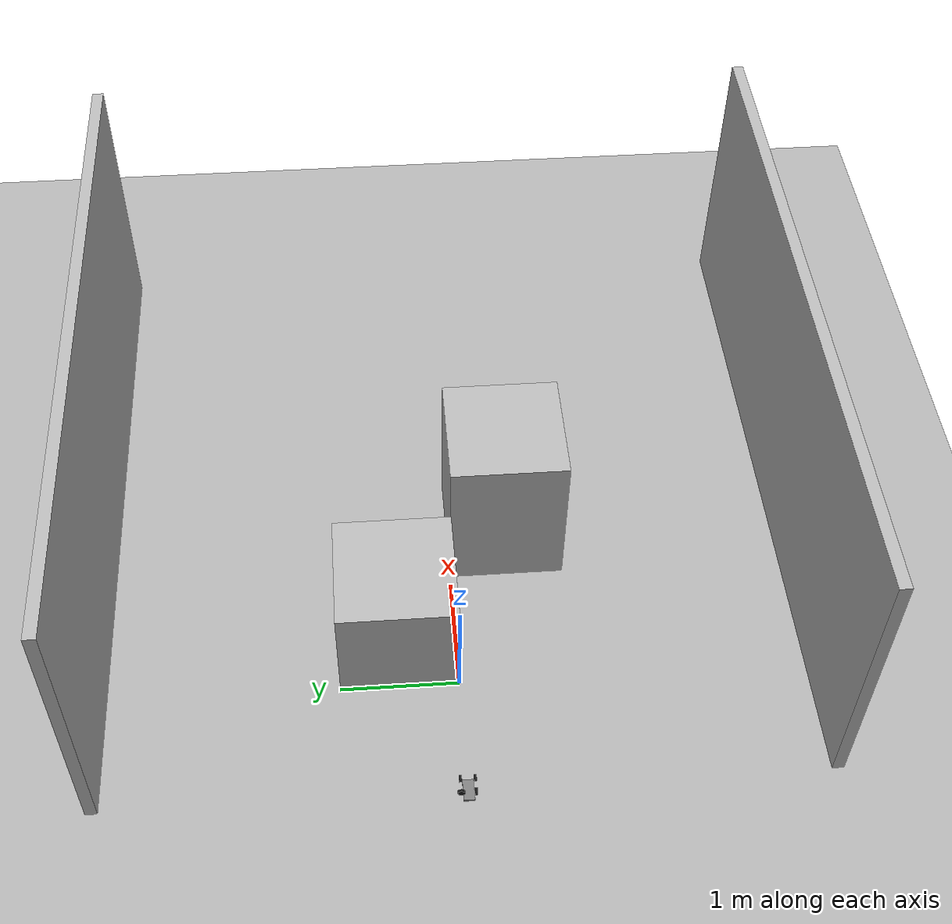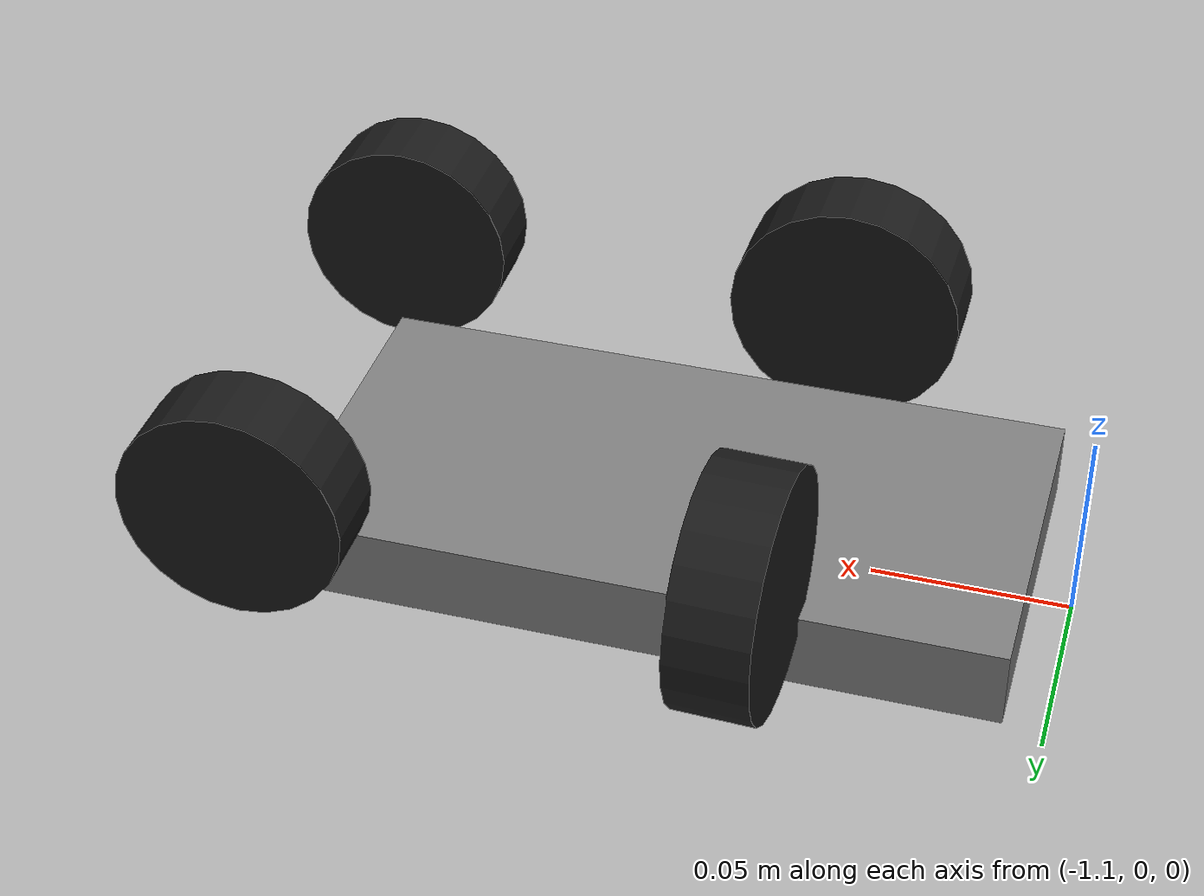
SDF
<sdf version='1.10'>
  <world name='factory'>
    <gravity>0 0 -9.8000000000000007</gravity>
    <magnetic_field>5.5644999999999998e-06 2.2875799999999999e-05 -4.2388400000000002e-05</magnetic_field>
    <atmosphere type='adiabatic'/>
    <physics type='ode'>
      <max_step_size>0.001</max_step_size>
      <real_time_factor>1</real_time_factor>
      <real_time_update_rate>1000</real_time_update_rate>
    </physics>
    <scene>
      <ambient>0.400000006 0.400000006 0.400000006 1</ambient>
      <background>0.699999988 0.699999988 0.699999988 1</background>
      <shadows>true</shadows>
    </scene>
    <model name='ground'>
      <static>true</static>
      <link name='base_link'>
        <collision name='base_col'>
          <geometry>
            <plane>
              <normal>0 0 1</normal>
              <size>100 100</size>
            </plane>
          </geometry>
          <surface>
            <friction>
              <ode/>
            </friction>
            <bounce/>
            <contact/>
          </surface>
        </collision>
        <visual name='base_vis'>
          <geometry>
            <plane>
              <normal>0 0 1</normal>
              <size>100 100</size>
            </plane>
          </geometry>
          <material>
            <ambient>0.699999988 0.699999988 0.699999988 1</ambient>
            <diffuse>0.699999988 0.699999988 0.699999988 1</diffuse>
          </material>
        </visual>
        <pose>0 0 0 0 0 0</pose>
        <inertial>
          <pose>0 0 0 0 0 0</pose>
          <mass>1</mass>
          <inertia>
            <ixx>1</ixx>
            <ixy>0</ixy>
            <ixz>0</ixz>
            <iyy>1</iyy>
            <iyz>0</iyz>
            <izz>1</izz>
          </inertia>
        </inertial>
        <enable_wind>false</enable_wind>
      </link>
      <pose>0 0 0 0 0 0</pose>
      <self_collide>false</self_collide>
    </model>
    <model name='wall1'>
      <static>true</static>
      <pose>2 -3 1.25 0 0 0</pose>
      <link name='l'>
        <collision name='c'>
          <geometry>
            <box>
              <size>6 0.10000000000000001 2.5</size>
            </box>
          </geometry>
          <surface>
            <friction>
              <ode/>
            </friction>
            <bounce/>
            <contact/>
          </surface>
        </collision>
        <visual name='v'>
          <geometry>
            <box>
              <size>6 0.10000000000000001 2.5</size>
            </box>
          </geometry>
        </visual>
        <pose>0 0 0 0 0 0</pose>
        <inertial>
          <pose>0 0 0 0 0 0</pose>
          <mass>1</mass>
          <inertia>
            <ixx>1</ixx>
            <ixy>0</ixy>
            <ixz>0</ixz>
            <iyy>1</iyy>
            <iyz>0</iyz>
            <izz>1</izz>
          </inertia>
        </inertial>
        <enable_wind>false</enable_wind>
      </link>
      <self_collide>false</self_collide>
    </model>
    <model name='wall2'>
      <static>true</static>
      <pose>2 3 1.25 0 0 0</pose>
      <link name='l'>
        <collision name='c'>
          <geometry>
            <box>
              <size>6 0.10000000000000001 2.5</size>
            </box>
          </geometry>
          <surface>
            <friction>
              <ode/>
            </friction>
            <bounce/>
            <contact/>
          </surface>
        </collision>
        <visual name='v'>
          <geometry>
            <box>
              <size>6 0.10000000000000001 2.5</size>
            </box>
          </geometry>
        </visual>
        <pose>0 0 0 0 0 0</pose>
        <inertial>
          <pose>0 0 0 0 0 0</pose>
          <mass>1</mass>
          <inertia>
            <ixx>1</ixx>
            <ixy>0</ixy>
            <ixz>0</ixz>
            <iyy>1</iyy>
            <iyz>0</iyz>
            <izz>1</izz>
          </inertia>
        </inertial>
        <enable_wind>false</enable_wind>
      </link>
      <self_collide>false</self_collide>
    </model>
    <model name='box_1'>
      <static>true</static>
      <pose>0.5 0.5 0.5 0 0 0</pose>
      <link name='link'>
        <collision name='col'>
          <geometry>
            <box>
              <size>1 1 1</size>
            </box>
          </geometry>
          <surface>
            <friction>
              <ode/>
            </friction>
            <bounce/>
            <contact/>
          </surface>
        </collision>
        <visual name='vis'>
          <geometry>
            <box>
              <size>1 1 1</size>
            </box>
          </geometry>
        </visual>
        <pose>0 0 0 0 0 0</pose>
        <inertial>
          <pose>0 0 0 0 0 0</pose>
          <mass>1</mass>
          <inertia>
            <ixx>1</ixx>
            <ixy>0</ixy>
            <ixz>0</ixz>
            <iyy>1</iyy>
            <iyz>0</iyz>
            <izz>1</izz>
          </inertia>
        </inertial>
        <enable_wind>false</enable_wind>
      </link>
      <self_collide>false</self_collide>
    </model>
    <model name='box_2'>
      <static>true</static>
      <pose>1.6000000000000001 -0.5 0.69999999999999996 0 0 0</pose>
      <link name='link'>
        <collision name='col'>
          <geometry>
            <box>
              <size>1 1 1.3999999999999999</size>
            </box>
          </geometry>
          <surface>
            <friction>
              <ode/>
            </friction>
            <bounce/>
            <contact/>
          </surface>
        </collision>
        <visual name='vis'>
          <geometry>
            <box>
              <size>1 1 1.3999999999999999</size>
            </box>
          </geometry>
        </visual>
        <pose>0 0 0 0 0 0</pose>
        <inertial>
          <pose>0 0 0 0 0 0</pose>
          <mass>1</mass>
          <inertia>
            <ixx>1</ixx>
            <ixy>0</ixy>
            <ixz>0</ixz>
            <iyy>1</iyy>
            <iyz>0</iyz>
            <izz>1</izz>
          </inertia>
        </inertial>
        <enable_wind>false</enable_wind>
      </link>
      <self_collide>false</self_collide>
    </model>
    <model name='picarx'>
      <pose>-0.99999999979000742 -2.4032243071626877e-20 0.0099998899042751076 2.326947831632521e-18 2.113848987451022e-08 -3.3032088206838045e-21</pose>
      <static>false</static>
      <link name='base_link'>
        <pose>0 0 0 0 0 0</pose>
        <inertial>
          <mass>1</mass>
          <inertia>
            <ixx>0.00071000000000000002</ixx>
            <iyy>0.0027299999999999998</iyy>
            <izz>0.0033800000000000002</izz>
            <ixy>0</ixy>
            <ixz>0</ixz>
            <iyz>0</iyz>
          </inertia>
          <pose>0 0 0 0 0 0</pose>
        </inertial>
        <collision name='base_col'>
          <geometry>
            <box>
              <size>0.17999999999999999 0.089999999999999997 0.02</size>
            </box>
          </geometry>
          <surface>
            <friction>
              <ode>
                <mu>1</mu>
                <mu2>1</mu2>
              </ode>
            </friction>
            <bounce/>
            <contact/>
          </surface>
        </collision>
        <visual name='base_vis'>
          <geometry>
            <box>
              <size>0.17999999999999999 0.089999999999999997 0.02</size>
            </box>
          </geometry>
          <material>
            <ambient>0.5 0.5 0.5 1</ambient>
          </material>
        </visual>
        <enable_wind>false</enable_wind>
      </link>
      <link name='left_wheel'>
        <pose>-0.029999999987896153 0.060000000000517251 0.030000107629610903 1.570796445386559 -3.6712902045182054e-06 1.5385060517673379</pose>
        <inertial>
          <mass>0.050000000000000003</mass>
          <inertia>
            <ixx>5.0000000000000002e-05</ixx>
            <iyy>2.0000000000000002e-05</iyy>
            <izz>5.0000000000000002e-05</izz>
            <ixy>0</ixy>
            <ixz>0</ixz>
            <iyz>0</iyz>
          </inertia>
          <pose>0 0 0 0 0 0</pose>
        </inertial>
        <collision name='col'>
          <geometry>
            <cylinder>
              <radius>0.029999999999999999</radius>
              <length>0.02</length>
            </cylinder>
          </geometry>
          <surface>
            <friction>
              <ode>
                <mu>1.5</mu>
                <mu2>1.5</mu2>
              </ode>
            </friction>
            <bounce/>
            <contact/>
          </surface>
        </collision>
        <visual name='vis'>
          <geometry>
            <cylinder>
              <radius>0.029999999999999999</radius>
              <length>0.02</length>
            </cylinder>
          </geometry>
          <material>
            <ambient>0.100000001 0.100000001 0.100000001 1</ambient>
          </material>
        </visual>
        <enable_wind>false</enable_wind>
      </link>
      <link name='right_wheel'>
        <pose>-0.029999999989866799 -0.059999999999482759 0.030000107629610723 1.5707926538196697 -4.1094216331021018e-08 3.130405801503632</pose>
        <inertial>
          <mass>0.050000000000000003</mass>
          <inertia>
            <ixx>5.0000000000000002e-05</ixx>
            <iyy>2.0000000000000002e-05</iyy>
            <izz>5.0000000000000002e-05</izz>
            <ixy>0</ixy>
            <ixz>0</ixz>
            <iyz>0</iyz>
          </inertia>
          <pose>0 0 0 0 0 0</pose>
        </inertial>
        <collision name='col'>
          <geometry>
            <cylinder>
              <radius>0.029999999999999999</radius>
              <length>0.02</length>
            </cylinder>
          </geometry>
          <surface>
            <friction>
              <ode>
                <mu>1.5</mu>
                <mu2>1.5</mu2>
              </ode>
            </friction>
            <bounce/>
            <contact/>
          </surface>
        </collision>
        <visual name='vis'>
          <geometry>
            <cylinder>
              <radius>0.029999999999999999</radius>
              <length>0.02</length>
            </cylinder>
          </geometry>
          <material>
            <ambient>0.100000001 0.100000001 0.100000001 1</ambient>
          </material>
        </visual>
        <enable_wind>false</enable_wind>
      </link>
      <link name='front_left_wheel'>
        <pose>0.090000000000000191 0.059999999999999991 0.029999999999999999 1.5708000000000004 -9.3524130298968419e-24 -3.1015764896729439e-25</pose>
        <visual name='vis'>
          <geometry>
            <cylinder>
              <radius>0.028000000000000001</radius>
              <length>0.02</length>
            </cylinder>
          </geometry>
          <material>
            <ambient>0.100000001 0.100000001 0.100000001 1</ambient>
          </material>
        </visual>
        <inertial>
          <pose>0 0 0 0 0 0</pose>
          <mass>1</mass>
          <inertia>
            <ixx>1</ixx>
            <ixy>0</ixy>
            <ixz>0</ixz>
            <iyy>1</iyy>
            <iyz>0</iyz>
            <izz>1</izz>
          </inertia>
        </inertial>
        <enable_wind>false</enable_wind>
      </link>
      <joint name='front_left_fixed' type='fixed'>
        <parent>base_link</parent>
        <child>front_left_wheel</child>
        <pose>0 3.4694499999999997e-18 -1.3877799999999999e-17 0 0 0</pose>
      </joint>
      <link name='front_right_wheel'>
        <pose>0.090000000000000191 -0.059999999999999991 0.029999999999999999 1.5708000000000004 -9.3524130298968419e-24 -3.1015764896729439e-25</pose>
        <visual name='vis'>
          <geometry>
            <cylinder>
              <radius>0.028000000000000001</radius>
              <length>0.02</length>
            </cylinder>
          </geometry>
          <material>
            <ambient>0.100000001 0.100000001 0.100000001 1</ambient>
          </material>
        </visual>
        <inertial>
          <pose>0 0 0 0 0 0</pose>
          <mass>1</mass>
          <inertia>
            <ixx>1</ixx>
            <ixy>0</ixy>
            <ixz>0</ixz>
            <iyy>1</iyy>
            <iyz>0</iyz>
            <izz>1</izz>
          </inertia>
        </inertial>
        <enable_wind>false</enable_wind>
      </link>
      <joint name='front_right_fixed' type='fixed'>
        <parent>base_link</parent>
        <child>front_right_wheel</child>
        <pose>0 1.04083e-17 6.9388900000000004e-18 0 0 0</pose>
      </joint>
      <joint name='left_wheel_joint' type='revolute'>
        <parent>base_link</parent>
        <child>left_wheel</child>
        <axis>
          <xyz>0 1 0</xyz>
          <limit>
            <lower>-10000000000000000</lower>
            <upper>10000000000000000</upper>
            <effort>inf</effort>
            <velocity>inf</velocity>
            <stiffness>100000000</stiffness>
            <dissipation>1</dissipation>
          </limit>
          <dynamics>
            <spring_reference>0</spring_reference>
            <spring_stiffness>0</spring_stiffness>
            <damping>0.20000000000000001</damping>
            <friction>0</friction>
          </dynamics>
        </axis>
        <pose>0 3.4694499999999997e-18 -1.3877799999999999e-17 0 0 0</pose>
      </joint>
      <joint name='right_wheel_joint' type='revolute'>
        <parent>base_link</parent>
        <child>right_wheel</child>
        <axis>
          <xyz>0 1 0</xyz>
          <limit>
            <lower>-10000000000000000</lower>
            <upper>10000000000000000</upper>
            <effort>inf</effort>
            <velocity>inf</velocity>
            <stiffness>100000000</stiffness>
            <dissipation>1</dissipation>
          </limit>
          <dynamics>
            <spring_reference>0</spring_reference>
            <spring_stiffness>0</spring_stiffness>
            <damping>0.20000000000000001</damping>
            <friction>0</friction>
          </dynamics>
        </axis>
        <pose>0 1.04083e-17 6.9388900000000004e-18 0 0 0</pose>
      </joint>
      <link name='sonar_link'>
        <pose>0.10000000000000009 1.4294011305999016e-35 0.049999999999999996 0 3.8432259159898713e-39 0</pose>
        <sensor name='front_scan' type='ray'>
          <update_rate>15</update_rate>
          <ray>
            <scan>
              <horizontal>
                <samples>61</samples>
                <resolution>1</resolution>
                <min_angle>-0.45000000000000001</min_angle>
                <max_angle>0.45000000000000001</max_angle>
              </horizontal>
            </scan>
            <range>
              <min>0.029999999999999999</min>
              <max>2.5</max>
              <resolution>0.01</resolution>
            </range>
          </ray>
          <topic>/picarx/cmd_vel</topic>
        </sensor>
        <inertial>
          <pose>0 0 0 0 0 0</pose>
          <mass>1</mass>
          <inertia>
            <ixx>1</ixx>
            <ixy>0</ixy>
            <ixz>0</ixz>
            <iyy>1</iyy>
            <iyz>0</iyz>
            <izz>1</izz>
          </inertia>
        </inertial>
        <enable_wind>false</enable_wind>
      </link>
      <joint name='sonar_fixed' type='fixed'>
        <parent>base_link</parent>
        <child>sonar_link</child>
        <pose>0 0 0 0 0 0</pose>
      </joint>
      <link name='camera_link'>
        <pose>0.080000000000000071 3.1597288150103088e-35 0.080000000000000002 0 3.8432259159898713e-39 0</pose>
        <sensor name='front_camera' type='camera'>
          <pose>0 0 0 0 0 0</pose>
          <topic>/picarx/cmd_vel</topic>
          <update_rate>15</update_rate>
          <enable_metrics>false</enable_metrics>
          <camera>
            <pose>0 0 0 0 0 0</pose>
            <horizontal_fov>1.0469999999999999</horizontal_fov>
            <image>
              <width>160</width>
              <height>120</height>
              <format>RGB_INT8</format>
              <anti_aliasing>4</anti_aliasing>
            </image>
            <camera_info_topic>__default__</camera_info_topic>
            <trigger_topic></trigger_topic>
            <triggered>false</triggered>
            <clip>
              <near>0.02</near>
              <far>10</far>
            </clip>
            <save enabled='false'>
              <path>__default__</path>
            </save>
            <visibility_mask>4294967295</visibility_mask>
            <noise>
              <type>none</type>
              <mean>0</mean>
              <stddev>0</stddev>
            </noise>
            <distortion>
              <k1>0</k1>
              <k2>0</k2>
              <k3>0</k3>
              <p1>0</p1>
              <p2>0</p2>
              <center>0.5 0.5</center>
            </distortion>
            <lens>
              <type>stereographic</type>
              <scale_to_hfov>true</scale_to_hfov>
              <cutoff_angle>1.5707963267948966</cutoff_angle>
              <env_texture_size>256</env_texture_size>
            </lens>
            <optical_frame_id></optical_frame_id>
          </camera>
        </sensor>
        <inertial>
          <pose>0 0 0 0 0 0</pose>
          <mass>1</mass>
          <inertia>
            <ixx>1</ixx>
            <ixy>0</ixy>
            <ixz>0</ixz>
            <iyy>1</iyy>
            <iyz>0</iyz>
            <izz>1</izz>
          </inertia>
        </inertial>
        <enable_wind>false</enable_wind>
      </link>
      <joint name='camera_fixed' type='fixed'>
        <parent>base_link</parent>
        <child>camera_link</child>
        <pose>0 0 0 0 0 0</pose>
      </joint>
      <plugin name='gz::sim::systems::DiffDrive' filename='gz-sim-diff-drive-system'>
        <left_joint>left_wheel_joint</left_joint>
        <right_joint>right_wheel_joint</right_joint>
        <wheel_separation>0.12</wheel_separation>
        <wheel_radius>0.03</wheel_radius>
        <topic>/picarx/cmd_vel</topic>
        <odom_topic>/picarx/odometry</odom_topic>
        <odom_frame>odom</odom_frame>
        <robot_base_frame>base_link</robot_base_frame>
        <max_linear_speed>0.5</max_linear_speed>
        <max_angular_speed>2.0</max_angular_speed>
      </plugin>
      <self_collide>false</self_collide>
    </model>
    <light name='sun' type='directional'>
      <pose>0 0 10 0 0 0</pose>
      <cast_shadows>true</cast_shadows>
      <intensity>1</intensity>
      <direction>-0.5 0.5 -1</direction>
      <diffuse>1 1 1 1</diffuse>
      <specular>0.100000001 0.100000001 0.100000001 1</specular>
      <attenuation>
        <range>1000</range>
        <linear>0.0099999997764825821</linear>
        <constant>0.89999997615814209</constant>
        <quadratic>0.0010000000474974513</quadratic>
      </attenuation>
      <spot>
        <inner_angle>0</inner_angle>
        <outer_angle>0</outer_angle>
        <falloff>0</falloff>
      </spot>
    </light>
  </world>
</sdf>
